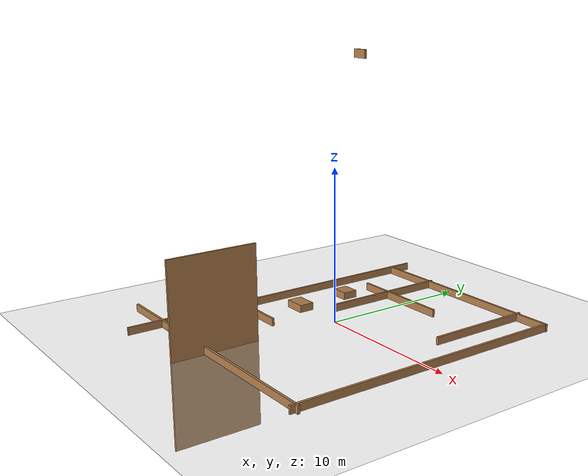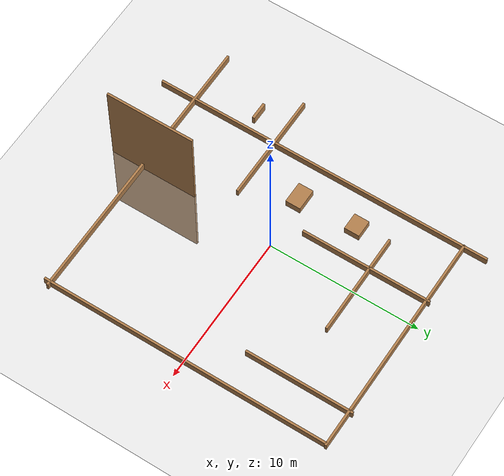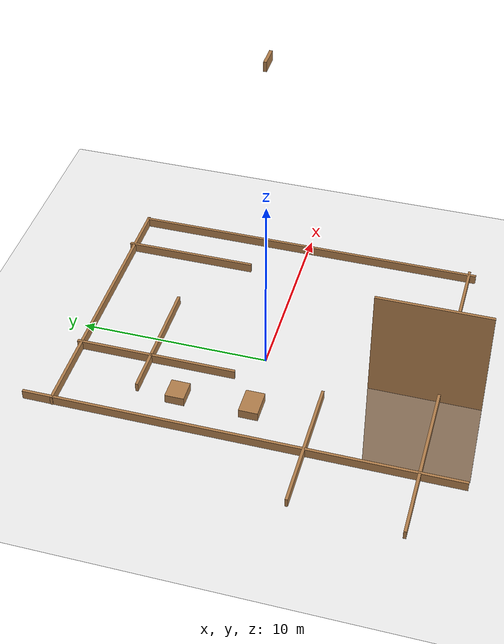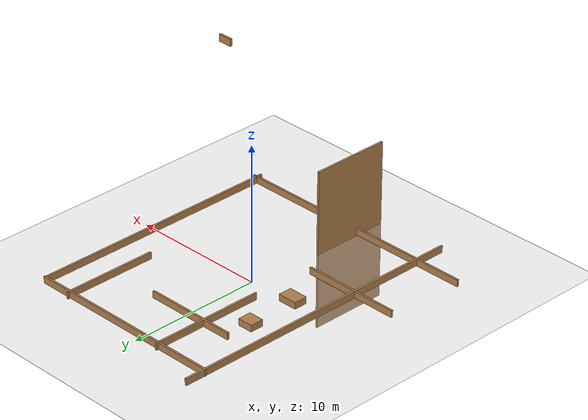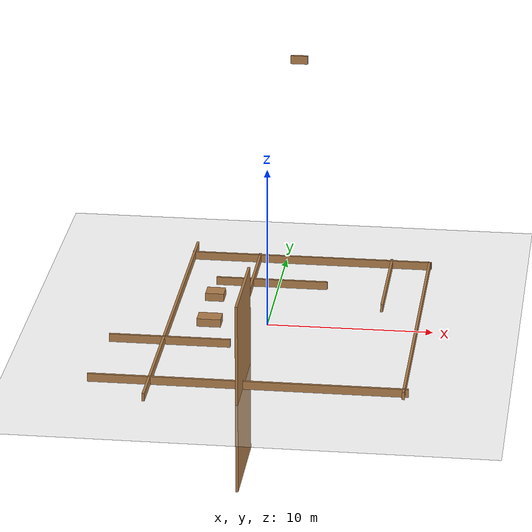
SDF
<sdf version="1.7">
 <world name="default">
  <light name="sun" type="directional">
   <pose>0 0 10 0 -0 0</pose>
   <diffuse>0.8 0.8 0.8 1</diffuse>
   <specular>0.2 0.2 0.2 1</specular>
   <attenuation>
    <range>1000</range>
    <constant>0.9</constant>
    <linear>0.01</linear>
    <quadratic>0.001</quadratic>
   </attenuation>
   <direction>-0.5 0.1 -0.9</direction>
   <spot><inner_angle>0</inner_angle><outer_angle>0</outer_angle><falloff>0</falloff></spot>
  </light>
  <model name="ground_plane">
   <static>1</static>
   <link name="link">
    <collision name="collision">
     <geometry><plane><normal>0 0 1</normal><size>100 100</size></plane></geometry>
     <surface>
      <contact><collide_bitmask>65535</collide_bitmask></contact>
      <friction><ode><mu>100</mu><mu2>50</mu2></ode></friction>
     </surface>
    </collision>
    <visual name="visual">
     <cast_shadows>0</cast_shadows>
     <geometry><plane><normal>0 0 1</normal><size>100 100</size></plane></geometry>
     <material>
      <script><uri>file://media/materials/scripts/gazebo.material</uri><name>Gazebo/Grey</name></script>
     </material>
    </visual>
   </link>
  </model>
  <gravity>0 0 -9.8</gravity>
  <magnetic_field>6e-06 2.3e-05 -4.2e-05</magnetic_field>
  <atmosphere type="adiabatic"/>
  <physics type="ode">
   <max_step_size>0.001</max_step_size>
   <real_time_factor>1</real_time_factor>
   <real_time_update_rate>1000</real_time_update_rate>
  </physics>
  <scene><ambient>0.4 0.4 0.4 1</ambient><background>0.7 0.7 0.7 1</background><shadows>1</shadows></scene>
  <spherical_coordinates>
   <surface_model>EARTH_WGS84</surface_model>
   <latitude_deg>0</latitude_deg>
   <longitude_deg>0</longitude_deg>
   <elevation>0</elevation>
   <heading_deg>0</heading_deg>
  </spherical_coordinates>
  <model name="turtlebot3_plaza_bigger">
   <link name="Wall_0">
    <pose>-5.73049 -0.193719 0 0 -0 1.5708</pose>
    <inertial>
     <inertia><ixx>0</ixx><ixy>0</ixy><ixz>0</ixz><iyy>0</iyy><iyz>0</iyz><izz>0</izz></inertia>
     <mass>0</mass>
    </inertial>
    <visual name="Wall_0_Visual">
     <pose>0 0 0.25 0 -0 0</pose>
     <geometry><box><size>22.5917 0.15 0.5</size></box></geometry>
     <material>
      <script><uri>file://media/materials/scripts/gazebo.material</uri><name>Gazebo/Wood</name></script>
      <ambient>1 1 1 1</ambient>
      <shader type="pixel"/>
     </material>
    </visual>
    <collision name="Wall_0_Collision">
     <pose>0 0 0.25 0 -0 0</pose>
     <geometry><box><size>22.5917 0.15 0.5</size></box></geometry>
     <surface>
      <friction>
       <ode><mu>1</mu><mu2>1</mu2><fdir1>0 0 0</fdir1><slip1>0</slip1><slip2>0</slip2></ode>
       <torsional>
        <coefficient>1</coefficient>
        <patch_radius>0</patch_radius>
        <surface_radius>0</surface_radius>
        <use_patch_radius>1</use_patch_radius>
        <ode><slip>0</slip></ode>
       </torsional>
      </friction>
      <bounce><restitution_coefficient>0</restitution_coefficient><threshold>1e+06</threshold></bounce>
      <contact>
       <collide_without_contact>0</collide_without_contact>
       <collide_without_contact_bitmask>1</collide_without_contact_bitmask>
       <collide_bitmask>1</collide_bitmask>
       <ode>
        <soft_cfm>0</soft_cfm>
        <soft_erp>0.2</soft_erp>
        <kp>1e+13</kp>
        <kd>1</kd>
        <max_vel>0.01</max_vel>
        <min_depth>0</min_depth>
       </ode>
       <bullet>
        <split_impulse>1</split_impulse>
        <split_impulse_penetration_threshold>-0.01</split_impulse_penetration_threshold>
        <soft_cfm>0</soft_cfm>
        <soft_erp>0.2</soft_erp>
        <kp>1e+13</kp>
        <kd>1</kd>
       </bullet>
      </contact>
     </surface>
    </collision>
   </link>
   <link name="Wall_11">
    <pose>-5.3745 -3.47044 0 0 -0 0</pose>
    <inertial>
     <inertia><ixx>0</ixx><ixy>0</ixy><ixz>0</ixz><iyy>0</iyy><iyz>0</iyz><izz>0</izz></inertia>
     <mass>0</mass>
    </inertial>
    <visual name="Wall_11_Visual">
     <pose>0 0 0.25 0 -0 0</pose>
     <geometry><box><size>7.2744 0.15 0.5</size></box></geometry>
     <material>
      <script><uri>file://media/materials/scripts/gazebo.material</uri><name>Gazebo/Wood</name></script>
      <ambient>1 1 1 1</ambient>
      <shader type="pixel"/>
     </material>
    </visual>
    <collision name="Wall_11_Collision">
     <pose>0 0 0.25 0 -0 0</pose>
     <geometry><box><size>7.2744 0.15 0.5</size></box></geometry>
     <surface>
      <friction>
       <ode><mu>1</mu><mu2>1</mu2><fdir1>0 0 0</fdir1><slip1>0</slip1><slip2>0</slip2></ode>
       <torsional>
        <coefficient>1</coefficient>
        <patch_radius>0</patch_radius>
        <surface_radius>0</surface_radius>
        <use_patch_radius>1</use_patch_radius>
        <ode><slip>0</slip></ode>
       </torsional>
      </friction>
      <bounce><restitution_coefficient>0</restitution_coefficient><threshold>1e+06</threshold></bounce>
      <contact>
       <collide_without_contact>0</collide_without_contact>
       <collide_without_contact_bitmask>1</collide_without_contact_bitmask>
       <collide_bitmask>1</collide_bitmask>
       <ode>
        <soft_cfm>0</soft_cfm>
        <soft_erp>0.2</soft_erp>
        <kp>1e+13</kp>
        <kd>1</kd>
        <max_vel>0.01</max_vel>
        <min_depth>0</min_depth>
       </ode>
       <bullet>
        <split_impulse>1</split_impulse>
        <split_impulse_penetration_threshold>-0.01</split_impulse_penetration_threshold>
        <soft_cfm>0</soft_cfm>
        <soft_erp>0.2</soft_erp>
        <kp>1e+13</kp>
        <kd>1</kd>
       </bullet>
      </contact>
     </surface>
    </collision>
   </link>
   <link name="Wall_13">
    <pose>-3.42247 -0.230201 0 0 0 -1.5708</pose>
    <inertial>
     <inertia><ixx>0</ixx><ixy>0</ixy><ixz>0</ixz><iyy>0</iyy><iyz>0</iyz><izz>0</izz></inertia>
     <mass>0</mass>
    </inertial>
    <visual name="Wall_13_Visual">
     <pose>0 0 0.25 0 -0 0</pose>
     <geometry><box><size>1 1.44842 0.5</size></box></geometry>
     <material>
      <script><uri>file://media/materials/scripts/gazebo.material</uri><name>Gazebo/Wood</name></script>
      <ambient>1 1 1 1</ambient>
      <shader type="pixel"/>
     </material>
    </visual>
    <collision name="Wall_13_Collision">
     <pose>0 0 0.25 0 -0 0</pose>
     <geometry><box><size>1 1.44842 0.5</size></box></geometry>
     <surface>
      <friction>
       <ode><mu>1</mu><mu2>1</mu2><fdir1>0 0 0</fdir1><slip1>0</slip1><slip2>0</slip2></ode>
       <torsional>
        <coefficient>1</coefficient>
        <patch_radius>0</patch_radius>
        <surface_radius>0</surface_radius>
        <use_patch_radius>1</use_patch_radius>
        <ode><slip>0</slip></ode>
       </torsional>
      </friction>
      <bounce><restitution_coefficient>0</restitution_coefficient><threshold>1e+06</threshold></bounce>
      <contact>
       <collide_without_contact>0</collide_without_contact>
       <collide_without_contact_bitmask>1</collide_without_contact_bitmask>
       <collide_bitmask>1</collide_bitmask>
       <ode>
        <soft_cfm>0</soft_cfm>
        <soft_erp>0.2</soft_erp>
        <kp>1e+13</kp>
        <kd>1</kd>
        <max_vel>0.01</max_vel>
        <min_depth>0</min_depth>
       </ode>
       <bullet>
        <split_impulse>1</split_impulse>
        <split_impulse_penetration_threshold>-0.01</split_impulse_penetration_threshold>
        <soft_cfm>0</soft_cfm>
        <soft_erp>0.2</soft_erp>
        <kp>1e+13</kp>
        <kd>1</kd>
       </bullet>
      </contact>
     </surface>
    </collision>
   </link>
   <link name="Wall_15">
    <pose>-0.338375 -8.41117 0 0 -0 1.5708</pose>
    <inertial>
     <inertia><ixx>0</ixx><ixy>0</ixy><ixz>0</ixz><iyy>0</iyy><iyz>0</iyz><izz>0</izz></inertia>
     <mass>0</mass>
    </inertial>
    <visual name="Wall_15_Visual">
     <pose>0 0 0.25 0 -0 0</pose>
     <geometry><box><size>5.82569 0.15 11.7293</size></box></geometry>
     <material>
      <script><uri>file://media/materials/scripts/gazebo.material</uri><name>Gazebo/Wood</name></script>
      <ambient>1 1 1 1</ambient>
      <shader type="pixel"/>
     </material>
    </visual>
    <collision name="Wall_15_Collision">
     <pose>0 0 0.25 0 -0 0</pose>
     <geometry><box><size>5.82569 0.15 11.7293</size></box></geometry>
     <surface>
      <friction>
       <ode><mu>1</mu><mu2>1</mu2><fdir1>0 0 0</fdir1><slip1>0</slip1><slip2>0</slip2></ode>
       <torsional>
        <coefficient>1</coefficient>
        <patch_radius>0</patch_radius>
        <surface_radius>0</surface_radius>
        <use_patch_radius>1</use_patch_radius>
        <ode><slip>0</slip></ode>
       </torsional>
      </friction>
      <bounce><restitution_coefficient>0</restitution_coefficient><threshold>1e+06</threshold></bounce>
      <contact>
       <collide_without_contact>0</collide_without_contact>
       <collide_without_contact_bitmask>1</collide_without_contact_bitmask>
       <collide_bitmask>1</collide_bitmask>
       <ode>
        <soft_cfm>0</soft_cfm>
        <soft_erp>0.2</soft_erp>
        <kp>1e+13</kp>
        <kd>1</kd>
        <max_vel>0.01</max_vel>
        <min_depth>0</min_depth>
       </ode>
       <bullet>
        <split_impulse>1</split_impulse>
        <split_impulse_penetration_threshold>-0.01</split_impulse_penetration_threshold>
        <soft_cfm>0</soft_cfm>
        <soft_erp>0.2</soft_erp>
        <kp>1e+13</kp>
        <kd>1</kd>
       </bullet>
      </contact>
     </surface>
    </collision>
   </link>
   <link name="Wall_17">
    <pose>6.72866 6.22775 0 0 0 -1.5708</pose>
    <inertial>
     <inertia><ixx>0</ixx><ixy>0</ixy><ixz>0</ixz><iyy>0</iyy><iyz>0</iyz><izz>0</izz></inertia>
     <mass>0</mass>
    </inertial>
    <visual name="Wall_17_Visual">
     <pose>0 0 0.25 0 -0 0</pose>
     <geometry><box><size>7.1114 0.15 0.5</size></box></geometry>
     <material>
      <script><uri>file://media/materials/scripts/gazebo.material</uri><name>Gazebo/Wood</name></script>
      <ambient>1 1 1 1</ambient>
      <shader type="pixel"/>
     </material>
    </visual>
    <collision name="Wall_17_Collision">
     <pose>0 0 0.25 0 -0 0</pose>
     <geometry><box><size>7.1114 0.15 0.5</size></box></geometry>
     <surface>
      <friction>
       <ode><mu>1</mu><mu2>1</mu2><fdir1>0 0 0</fdir1><slip1>0</slip1><slip2>0</slip2></ode>
       <torsional>
        <coefficient>1</coefficient>
        <patch_radius>0</patch_radius>
        <surface_radius>0</surface_radius>
        <use_patch_radius>1</use_patch_radius>
        <ode><slip>0</slip></ode>
       </torsional>
      </friction>
      <bounce><restitution_coefficient>0</restitution_coefficient><threshold>1e+06</threshold></bounce>
      <contact>
       <collide_without_contact>0</collide_without_contact>
       <collide_without_contact_bitmask>1</collide_without_contact_bitmask>
       <collide_bitmask>1</collide_bitmask>
       <ode>
        <soft_cfm>0</soft_cfm>
        <soft_erp>0.2</soft_erp>
        <kp>1e+13</kp>
        <kd>1</kd>
        <max_vel>0.01</max_vel>
        <min_depth>0</min_depth>
       </ode>
       <bullet>
        <split_impulse>1</split_impulse>
        <split_impulse_penetration_threshold>-0.01</split_impulse_penetration_threshold>
        <soft_cfm>0</soft_cfm>
        <soft_erp>0.2</soft_erp>
        <kp>1e+13</kp>
        <kd>1</kd>
       </bullet>
      </contact>
     </surface>
    </collision>
   </link>
   <link name="Wall_19">
    <pose>1.91128 0.4632 16.6282 0 -0 0</pose>
    <visual name="Wall_19_Visual">
     <pose>0 0 0.25 0 -0 0</pose>
     <geometry><box><size>1 0.15 0.5</size></box></geometry>
     <material>
      <script><uri>file://media/materials/scripts/gazebo.material</uri><name>Gazebo/Wood</name></script>
      <ambient>1 1 1 1</ambient>
      <shader type="pixel"/>
     </material>
    </visual>
    <collision name="Wall_19_Collision">
     <pose>0 0 0.25 0 -0 0</pose>
     <geometry><box><size>1 0.15 0.5</size></box></geometry>
     <surface>
      <friction>
       <ode><mu>1</mu><mu2>1</mu2><fdir1>0 0 0</fdir1><slip1>0</slip1><slip2>0</slip2></ode>
       <torsional>
        <coefficient>1</coefficient>
        <patch_radius>0</patch_radius>
        <surface_radius>0</surface_radius>
        <use_patch_radius>1</use_patch_radius>
        <ode><slip>0</slip></ode>
       </torsional>
      </friction>
      <bounce><restitution_coefficient>0</restitution_coefficient><threshold>1e+06</threshold></bounce>
      <contact>
       <collide_without_contact>0</collide_without_contact>
       <collide_without_contact_bitmask>1</collide_without_contact_bitmask>
       <collide_bitmask>1</collide_bitmask>
       <ode>
        <soft_cfm>0</soft_cfm>
        <soft_erp>0.2</soft_erp>
        <kp>1e+13</kp>
        <kd>1</kd>
        <max_vel>0.01</max_vel>
        <min_depth>0</min_depth>
       </ode>
       <bullet>
        <split_impulse>1</split_impulse>
        <split_impulse_penetration_threshold>-0.01</split_impulse_penetration_threshold>
        <soft_cfm>0</soft_cfm>
        <soft_erp>0.2</soft_erp>
        <kp>1e+13</kp>
        <kd>1</kd>
       </bullet>
      </contact>
     </surface>
    </collision>
   </link>
   <link name="Wall_2">
    <pose>1.69583 9.53163 0 0 -0 0</pose>
    <inertial>
     <inertia><ixx>0</ixx><ixy>0</ixy><ixz>0</ixz><iyy>0</iyy><iyz>0</iyz><izz>0</izz></inertia>
     <mass>0</mass>
    </inertial>
    <visual name="Wall_2_Visual">
     <pose>0 0 0.25 0 -0 0</pose>
     <geometry><box><size>15.0495 0.15 0.5</size></box></geometry>
     <material>
      <script><uri>file://media/materials/scripts/gazebo.material</uri><name>Gazebo/Wood</name></script>
      <ambient>1 1 1 1</ambient>
      <shader type="pixel"/>
     </material>
    </visual>
    <collision name="Wall_2_Collision">
     <pose>0 0 0.25 0 -0 0</pose>
     <geometry><box><size>15.0495 0.15 0.5</size></box></geometry>
     <surface>
      <friction>
       <ode><mu>1</mu><mu2>1</mu2><fdir1>0 0 0</fdir1><slip1>0</slip1><slip2>0</slip2></ode>
       <torsional>
        <coefficient>1</coefficient>
        <patch_radius>0</patch_radius>
        <surface_radius>0</surface_radius>
        <use_patch_radius>1</use_patch_radius>
        <ode><slip>0</slip></ode>
       </torsional>
      </friction>
      <bounce><restitution_coefficient>0</restitution_coefficient><threshold>1e+06</threshold></bounce>
      <contact>
       <collide_without_contact>0</collide_without_contact>
       <collide_without_contact_bitmask>1</collide_without_contact_bitmask>
       <collide_bitmask>1</collide_bitmask>
       <ode>
        <soft_cfm>0</soft_cfm>
        <soft_erp>0.2</soft_erp>
        <kp>1e+13</kp>
        <kd>1</kd>
        <max_vel>0.01</max_vel>
        <min_depth>0</min_depth>
       </ode>
       <bullet>
        <split_impulse>1</split_impulse>
        <split_impulse_penetration_threshold>-0.01</split_impulse_penetration_threshold>
        <soft_cfm>0</soft_cfm>
        <soft_erp>0.2</soft_erp>
        <kp>1e+13</kp>
        <kd>1</kd>
       </bullet>
      </contact>
     </surface>
    </collision>
   </link>
   <link name="Wall_21">
    <pose>-1.5673 5.47458 0 0 0 -1.5708</pose>
    <inertial>
     <inertia><ixx>0</ixx><ixy>0</ixy><ixz>0</ixz><iyy>0</iyy><iyz>0</iyz><izz>0</izz></inertia>
     <mass>0</mass>
    </inertial>
    <visual name="Wall_21_Visual">
     <pose>0 0 0.25 0 -0 0</pose>
     <geometry><box><size>8.56031 0.15 0.5</size></box></geometry>
     <material>
      <script><uri>file://media/materials/scripts/gazebo.material</uri><name>Gazebo/Wood</name></script>
      <ambient>1 1 1 1</ambient>
      <shader type="pixel"/>
     </material>
    </visual>
    <collision name="Wall_21_Collision">
     <pose>0 0 0.25 0 -0 0</pose>
     <geometry><box><size>8.56031 0.15 0.5</size></box></geometry>
     <surface>
      <friction>
       <ode><mu>1</mu><mu2>1</mu2><fdir1>0 0 0</fdir1><slip1>0</slip1><slip2>0</slip2></ode>
       <torsional>
        <coefficient>1</coefficient>
        <patch_radius>0</patch_radius>
        <surface_radius>0</surface_radius>
        <use_patch_radius>1</use_patch_radius>
        <ode><slip>0</slip></ode>
       </torsional>
      </friction>
      <bounce><restitution_coefficient>0</restitution_coefficient><threshold>1e+06</threshold></bounce>
      <contact>
       <collide_without_contact>0</collide_without_contact>
       <collide_without_contact_bitmask>1</collide_without_contact_bitmask>
       <collide_bitmask>1</collide_bitmask>
       <ode>
        <soft_cfm>0</soft_cfm>
        <soft_erp>0.2</soft_erp>
        <kp>1e+13</kp>
        <kd>1</kd>
        <max_vel>0.01</max_vel>
        <min_depth>0</min_depth>
       </ode>
       <bullet>
        <split_impulse>1</split_impulse>
        <split_impulse_penetration_threshold>-0.01</split_impulse_penetration_threshold>
        <soft_cfm>0</soft_cfm>
        <soft_erp>0.2</soft_erp>
        <kp>1e+13</kp>
        <kd>1</kd>
       </bullet>
      </contact>
     </surface>
    </collision>
   </link>
   <link name="Wall_3">
    <pose>9.09389 -2.5e-05 0 0 0 -1.5708</pose>
    <inertial>
     <inertia><ixx>0</ixx><ixy>0</ixy><ixz>0</ixz><iyy>0</iyy><iyz>0</iyz><izz>0</izz></inertia>
     <mass>0</mass>
    </inertial>
    <visual name="Wall_3_Visual">
     <pose>0 0 0.25 0 -0 0</pose>
     <geometry><box><size>19.0564 0.15 0.5</size></box></geometry>
     <material>
      <script><uri>file://media/materials/scripts/gazebo.material</uri><name>Gazebo/Wood</name></script>
      <ambient>1 1 1 1</ambient>
      <shader type="pixel"/>
     </material>
    </visual>
    <collision name="Wall_3_Collision">
     <pose>0 0 0.25 0 -0 0</pose>
     <geometry><box><size>19.0564 0.15 0.5</size></box></geometry>
     <surface>
      <friction>
       <ode><mu>1</mu><mu2>1</mu2><fdir1>0 0 0</fdir1><slip1>0</slip1><slip2>0</slip2></ode>
       <torsional>
        <coefficient>1</coefficient>
        <patch_radius>0</patch_radius>
        <surface_radius>0</surface_radius>
        <use_patch_radius>1</use_patch_radius>
        <ode><slip>0</slip></ode>
       </torsional>
      </friction>
      <bounce><restitution_coefficient>0</restitution_coefficient><threshold>1e+06</threshold></bounce>
      <contact>
       <collide_without_contact>0</collide_without_contact>
       <collide_without_contact_bitmask>1</collide_without_contact_bitmask>
       <collide_bitmask>1</collide_bitmask>
       <ode>
        <soft_cfm>0</soft_cfm>
        <soft_erp>0.2</soft_erp>
        <kp>1e+13</kp>
        <kd>1</kd>
        <max_vel>0.01</max_vel>
        <min_depth>0</min_depth>
       </ode>
       <bullet>
        <split_impulse>1</split_impulse>
        <split_impulse_penetration_threshold>-0.01</split_impulse_penetration_threshold>
        <soft_cfm>0</soft_cfm>
        <soft_erp>0.2</soft_erp>
        <kp>1e+13</kp>
        <kd>1</kd>
       </bullet>
      </contact>
     </surface>
    </collision>
   </link>
   <link name="Wall_4">
    <pose>-1.8e-05 -9.13992 0 0 -0 3.14159</pose>
    <inertial>
     <inertia><ixx>0</ixx><ixy>0</ixy><ixz>0</ixz><iyy>0</iyy><iyz>0</iyz><izz>0</izz></inertia>
     <mass>0</mass>
    </inertial>
    <visual name="Wall_4_Visual">
     <pose>0 0 0.25 0 -0 0</pose>
     <geometry><box><size>18.7492 0.15 0.5</size></box></geometry>
     <material>
      <script><uri>file://media/materials/scripts/gazebo.material</uri><name>Gazebo/Wood</name></script>
      <ambient>1 1 1 1</ambient>
      <shader type="pixel"/>
     </material>
    </visual>
    <collision name="Wall_4_Collision">
     <pose>0 0 0.25 0 -0 0</pose>
     <geometry><box><size>18.7492 0.15 0.5</size></box></geometry>
     <surface>
      <friction>
       <ode><mu>1</mu><mu2>1</mu2><fdir1>0 0 0</fdir1><slip1>0</slip1><slip2>0</slip2></ode>
       <torsional>
        <coefficient>1</coefficient>
        <patch_radius>0</patch_radius>
        <surface_radius>0</surface_radius>
        <use_patch_radius>1</use_patch_radius>
        <ode><slip>0</slip></ode>
       </torsional>
      </friction>
      <bounce><restitution_coefficient>0</restitution_coefficient><threshold>1e+06</threshold></bounce>
      <contact>
       <collide_without_contact>0</collide_without_contact>
       <collide_without_contact_bitmask>1</collide_without_contact_bitmask>
       <collide_bitmask>1</collide_bitmask>
       <ode>
        <soft_cfm>0</soft_cfm>
        <soft_erp>0.2</soft_erp>
        <kp>1e+13</kp>
        <kd>1</kd>
        <max_vel>0.01</max_vel>
        <min_depth>0</min_depth>
       </ode>
       <bullet>
        <split_impulse>1</split_impulse>
        <split_impulse_penetration_threshold>-0.01</split_impulse_penetration_threshold>
        <soft_cfm>0</soft_cfm>
        <soft_erp>0.2</soft_erp>
        <kp>1e+13</kp>
        <kd>1</kd>
       </bullet>
      </contact>
     </surface>
    </collision>
   </link>
   <link name="Wall_7">
    <pose>-0.35448 5.72261 0 0 -0 0</pose>
    <inertial>
     <inertia><ixx>0</ixx><ixy>0</ixy><ixz>0</ixz><iyy>0</iyy><iyz>0</iyz><izz>0</izz></inertia>
     <mass>0</mass>
    </inertial>
    <visual name="Wall_7_Visual">
     <pose>0 0 0.25 0 -0 0</pose>
     <geometry><box><size>6.87906 0.15 0.5</size></box></geometry>
     <material>
      <script><uri>file://media/materials/scripts/gazebo.material</uri><name>Gazebo/Wood</name></script>
      <ambient>1 1 1 1</ambient>
      <shader type="pixel"/>
     </material>
    </visual>
    <collision name="Wall_7_Collision">
     <pose>0 0 0.25 0 -0 0</pose>
     <geometry><box><size>6.87906 0.15 0.5</size></box></geometry>
     <surface>
      <friction>
       <ode><mu>1</mu><mu2>1</mu2><fdir1>0 0 0</fdir1><slip1>0</slip1><slip2>0</slip2></ode>
       <torsional>
        <coefficient>1</coefficient>
        <patch_radius>0</patch_radius>
        <surface_radius>0</surface_radius>
        <use_patch_radius>1</use_patch_radius>
        <ode><slip>0</slip></ode>
       </torsional>
      </friction>
      <bounce><restitution_coefficient>0</restitution_coefficient><threshold>1e+06</threshold></bounce>
      <contact>
       <collide_without_contact>0</collide_without_contact>
       <collide_without_contact_bitmask>1</collide_without_contact_bitmask>
       <collide_bitmask>1</collide_bitmask>
       <ode>
        <soft_cfm>0</soft_cfm>
        <soft_erp>0.2</soft_erp>
        <kp>1e+13</kp>
        <kd>1</kd>
        <max_vel>0.01</max_vel>
        <min_depth>0</min_depth>
       </ode>
       <bullet>
        <split_impulse>1</split_impulse>
        <split_impulse_penetration_threshold>-0.01</split_impulse_penetration_threshold>
        <soft_cfm>0</soft_cfm>
        <soft_erp>0.2</soft_erp>
        <kp>1e+13</kp>
        <kd>1</kd>
       </bullet>
      </contact>
     </surface>
    </collision>
   </link>
   <link name="Wall_9">
    <pose>-3.58697 3.607 0 0 0 -1.5708</pose>
    <inertial>
     <inertia><ixx>0</ixx><ixy>0</ixy><ixz>0</ixz><iyy>0</iyy><iyz>0</iyz><izz>0</izz></inertia>
     <mass>0</mass>
    </inertial>
    <visual name="Wall_9_Visual">
     <pose>0 0 0.25 0 -0 0</pose>
     <geometry><box><size>1 1.13892 0.5</size></box></geometry>
     <material>
      <script><uri>file://media/materials/scripts/gazebo.material</uri><name>Gazebo/Wood</name></script>
      <ambient>1 1 1 1</ambient>
      <shader type="pixel"/>
     </material>
    </visual>
    <collision name="Wall_9_Collision">
     <pose>0 0 0.25 0 -0 0</pose>
     <geometry><box><size>1 1.13892 0.5</size></box></geometry>
     <surface>
      <friction>
       <ode><mu>1</mu><mu2>1</mu2><fdir1>0 0 0</fdir1><slip1>0</slip1><slip2>0</slip2></ode>
       <torsional>
        <coefficient>1</coefficient>
        <patch_radius>0</patch_radius>
        <surface_radius>0</surface_radius>
        <use_patch_radius>1</use_patch_radius>
        <ode><slip>0</slip></ode>
       </torsional>
      </friction>
      <bounce><restitution_coefficient>0</restitution_coefficient><threshold>1e+06</threshold></bounce>
      <contact>
       <collide_without_contact>0</collide_without_contact>
       <collide_without_contact_bitmask>1</collide_without_contact_bitmask>
       <collide_bitmask>1</collide_bitmask>
       <ode>
        <soft_cfm>0</soft_cfm>
        <soft_erp>0.2</soft_erp>
        <kp>1e+13</kp>
        <kd>1</kd>
        <max_vel>0.01</max_vel>
        <min_depth>0</min_depth>
       </ode>
       <bullet>
        <split_impulse>1</split_impulse>
        <split_impulse_penetration_threshold>-0.01</split_impulse_penetration_threshold>
        <soft_cfm>0</soft_cfm>
        <soft_erp>0.2</soft_erp>
        <kp>1e+13</kp>
        <kd>1</kd>
       </bullet>
      </contact>
     </surface>
    </collision>
   </link>
   <static>1</static>
   <pose>-0.069845 -0.011878 0 0 -0 0</pose>
  </model>
 </world>
</sdf>
